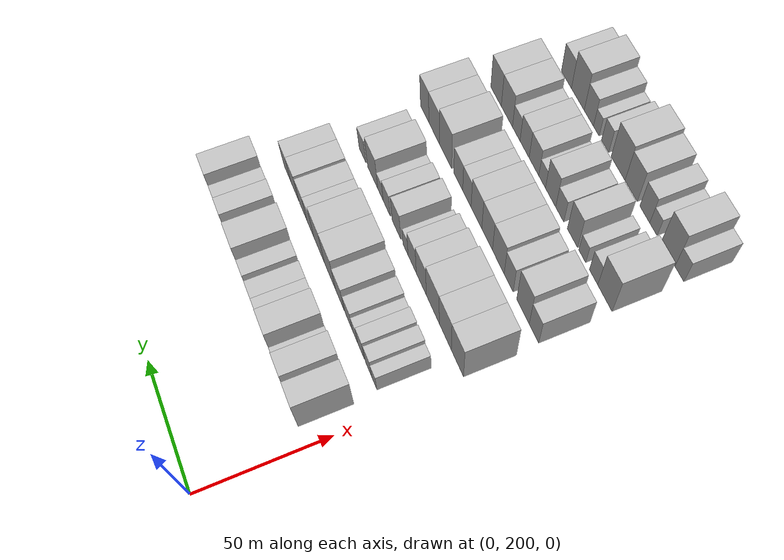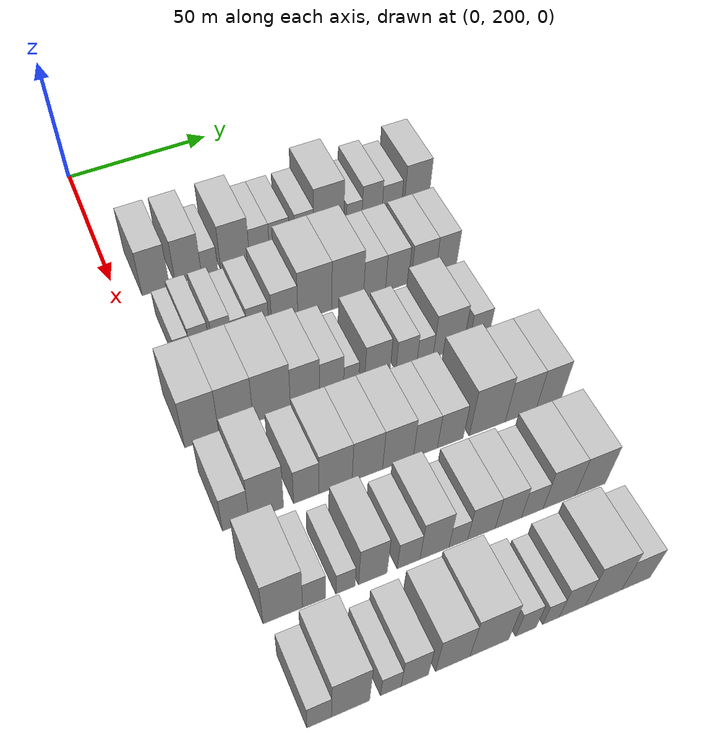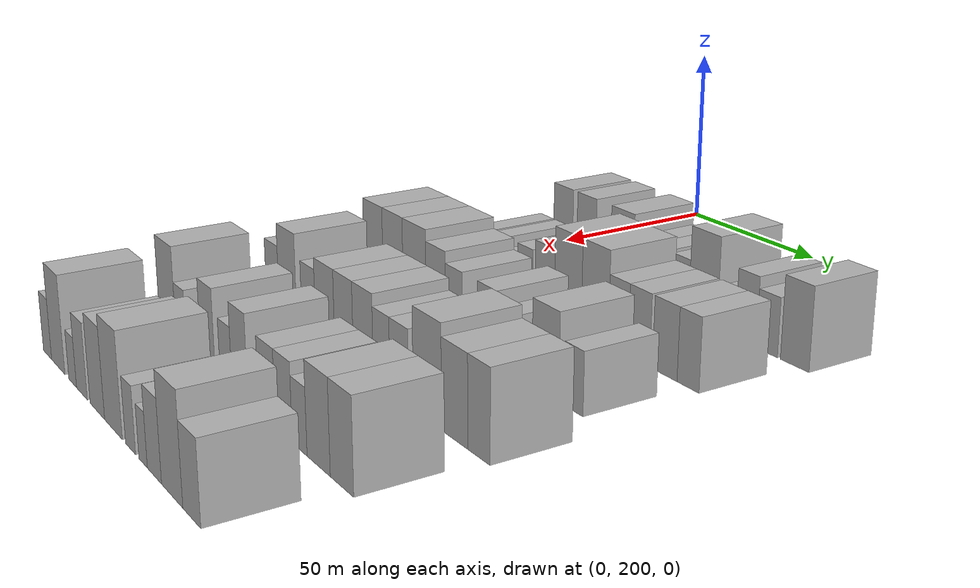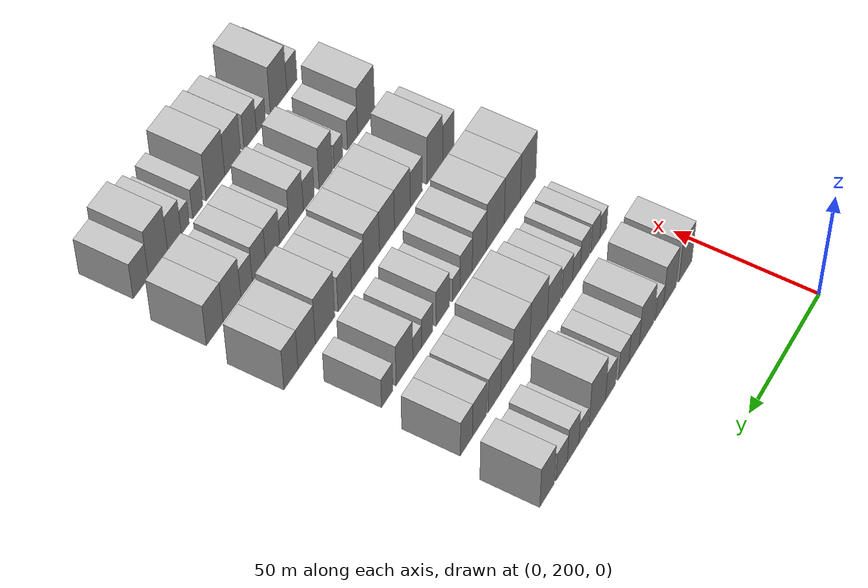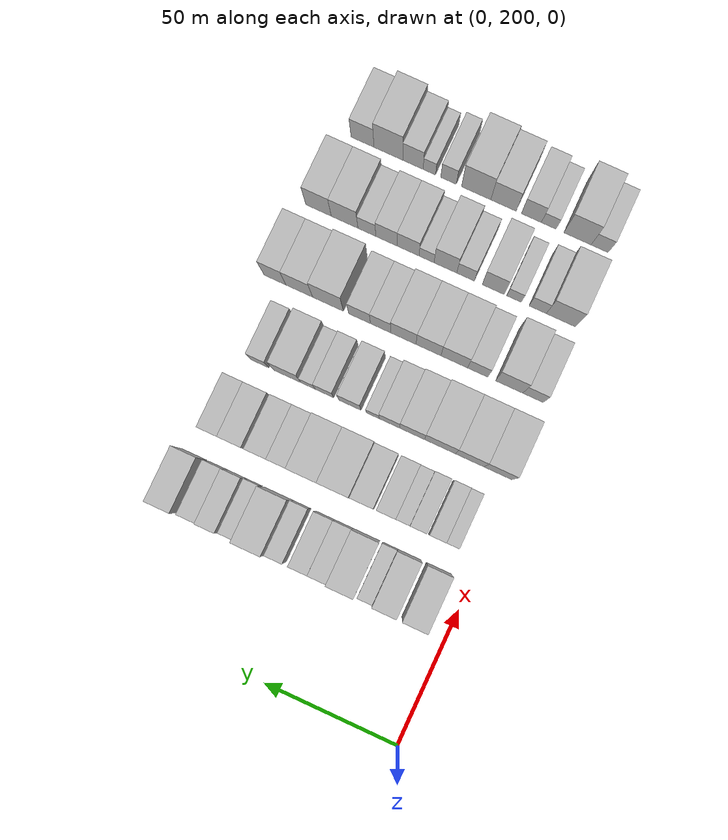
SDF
<sdf version="1.6">
 <world name="default">
  <model name="building_84">
   <static>1</static>
   <pose>50.0000 212.1249 0 0.000000 0.000000 0.000000</pose>
   <link name="link">
    <pose>0 0 10.50 0 0 0</pose>
    <collision name="collision"><geometry><box><size>20.0000 9.2497 21.0000</size></box></geometry></collision>
    <visual name="visual">
     <cast_shadows>0</cast_shadows>
     <geometry><box><size>20.0000 9.2497 21.0000</size></box></geometry>
     <material>
      <script>
       <uri>model://HANNAS_wall/materials/scripts</uri>
       <uri>model://HANNAS_wall/materials/textures</uri>
       <name>vrc/HANNAS_wall</name>
      </script>
     </material>
    </visual>
   </link>
  </model>
  <model name="building_85">
   <static>1</static>
   <pose>50.0000 223.1936 0 0.000000 0.000000 0.000000</pose>
   <link name="link">
    <pose>0 0 10.50 0 0 0</pose>
    <collision name="collision"><geometry><box><size>20.0000 8.8878 21.0000</size></box></geometry></collision>
    <visual name="visual">
     <cast_shadows>0</cast_shadows>
     <geometry><box><size>20.0000 8.8878 21.0000</size></box></geometry>
     <material>
      <script>
       <uri>model://HANNAS_wall/materials/scripts</uri>
       <uri>model://HANNAS_wall/materials/textures</uri>
       <name>vrc/HANNAS_wall</name>
      </script>
     </material>
    </visual>
   </link>
  </model>
  <model name="building_86">
   <static>1</static>
   <pose>50.0000 230.4290 0 0.000000 0.000000 0.000000</pose>
   <link name="link">
    <pose>0 0 6.00 0 0 0</pose>
    <collision name="collision"><geometry><box><size>20.0000 5.5831 12.0000</size></box></geometry></collision>
    <visual name="visual">
     <cast_shadows>0</cast_shadows>
     <geometry><box><size>20.0000 5.5831 12.0000</size></box></geometry>
     <material>
      <script>
       <uri>model://HANNAS_wall/materials/scripts</uri>
       <uri>model://HANNAS_wall/materials/textures</uri>
       <name>vrc/HANNAS_wall</name>
      </script>
     </material>
    </visual>
   </link>
  </model>
  <model name="building_87">
   <static>1</static>
   <pose>50.0000 239.2342 0 0.000000 0.000000 0.000000</pose>
   <link name="link">
    <pose>0 0 10.50 0 0 0</pose>
    <collision name="collision"><geometry><box><size>20.0000 10.0271 21.0000</size></box></geometry></collision>
    <visual name="visual">
     <cast_shadows>0</cast_shadows>
     <geometry><box><size>20.0000 10.0271 21.0000</size></box></geometry>
     <material>
      <script>
       <uri>model://HANNAS_wall/materials/scripts</uri>
       <uri>model://HANNAS_wall/materials/textures</uri>
       <name>vrc/HANNAS_wall</name>
      </script>
     </material>
    </visual>
   </link>
  </model>
  <model name="building_88">
   <static>1</static>
   <pose>50.0000 247.7460 0 0.000000 0.000000 0.000000</pose>
   <link name="link">
    <pose>0 0 7.50 0 0 0</pose>
    <collision name="collision"><geometry><box><size>20.0000 6.9966 15.0000</size></box></geometry></collision>
    <visual name="visual">
     <cast_shadows>0</cast_shadows>
     <geometry><box><size>20.0000 6.9966 15.0000</size></box></geometry>
     <material>
      <script>
       <uri>model://HANNAS_wall/materials/scripts</uri>
       <uri>model://HANNAS_wall/materials/textures</uri>
       <name>vrc/HANNAS_wall</name>
      </script>
     </material>
    </visual>
   </link>
  </model>
  <model name="building_89">
   <static>1</static>
   <pose>50.0000 254.7841 0 0.000000 0.000000 0.000000</pose>
   <link name="link">
    <pose>0 0 7.50 0 0 0</pose>
    <collision name="collision"><geometry><box><size>20.0000 7.0795 15.0000</size></box></geometry></collision>
    <visual name="visual">
     <cast_shadows>0</cast_shadows>
     <geometry><box><size>20.0000 7.0795 15.0000</size></box></geometry>
     <material>
      <script>
       <uri>model://HANNAS_wall/materials/scripts</uri>
       <uri>model://HANNAS_wall/materials/textures</uri>
       <name>vrc/HANNAS_wall</name>
      </script>
     </material>
    </visual>
   </link>
  </model>
  <model name="building_90">
   <static>1</static>
   <pose>50.0000 263.6608 0 0.000000 0.000000 0.000000</pose>
   <link name="link">
    <pose>0 0 7.50 0 0 0</pose>
    <collision name="collision"><geometry><box><size>20.0000 6.6739 15.0000</size></box></geometry></collision>
    <visual name="visual">
     <cast_shadows>0</cast_shadows>
     <geometry><box><size>20.0000 6.6739 15.0000</size></box></geometry>
     <material>
      <script>
       <uri>model://HANNAS_wall/materials/scripts</uri>
       <uri>model://HANNAS_wall/materials/textures</uri>
       <name>vrc/HANNAS_wall</name>
      </script>
     </material>
    </visual>
   </link>
  </model>
  <model name="building_91">
   <static>1</static>
   <pose>50.0000 272.4208 0 0.000000 0.000000 0.000000</pose>
   <link name="link">
    <pose>0 0 12.00 0 0 0</pose>
    <collision name="collision"><geometry><box><size>20.0000 10.8462 24.0000</size></box></geometry></collision>
    <visual name="visual">
     <cast_shadows>0</cast_shadows>
     <geometry><box><size>20.0000 10.8462 24.0000</size></box></geometry>
     <material>
      <script>
       <uri>model://HANNAS_wall/materials/scripts</uri>
       <uri>model://HANNAS_wall/materials/textures</uri>
       <name>vrc/HANNAS_wall</name>
      </script>
     </material>
    </visual>
   </link>
  </model>
  <model name="building_92">
   <static>1</static>
   <pose>50.0000 281.6630 0 0.000000 0.000000 0.000000</pose>
   <link name="link">
    <pose>0 0 6.00 0 0 0</pose>
    <collision name="collision"><geometry><box><size>20.0000 5.6380 12.0000</size></box></geometry></collision>
    <visual name="visual">
     <cast_shadows>0</cast_shadows>
     <geometry><box><size>20.0000 5.6380 12.0000</size></box></geometry>
     <material>
      <script>
       <uri>model://HANNAS_wall/materials/scripts</uri>
       <uri>model://HANNAS_wall/materials/textures</uri>
       <name>vrc/HANNAS_wall</name>
      </script>
     </material>
    </visual>
   </link>
  </model>
  <model name="building_93">
   <static>1</static>
   <pose>50.0000 288.1796 0 0.000000 0.000000 0.000000</pose>
   <link name="link">
    <pose>0 0 9.00 0 0 0</pose>
    <collision name="collision"><geometry><box><size>20.0000 7.3952 18.0000</size></box></geometry></collision>
    <visual name="visual">
     <cast_shadows>0</cast_shadows>
     <geometry><box><size>20.0000 7.3952 18.0000</size></box></geometry>
     <material>
      <script>
       <uri>model://HANNAS_wall/materials/scripts</uri>
       <uri>model://HANNAS_wall/materials/textures</uri>
       <name>vrc/HANNAS_wall</name>
      </script>
     </material>
    </visual>
   </link>
  </model>
  <model name="building_94">
   <static>1</static>
   <pose>50.0000 295.5066 0 0.000000 0.000000 0.000000</pose>
   <link name="link">
    <pose>0 0 7.50 0 0 0</pose>
    <collision name="collision"><geometry><box><size>20.0000 7.2587 15.0000</size></box></geometry></collision>
    <visual name="visual">
     <cast_shadows>0</cast_shadows>
     <geometry><box><size>20.0000 7.2587 15.0000</size></box></geometry>
     <material>
      <script>
       <uri>model://HANNAS_wall/materials/scripts</uri>
       <uri>model://HANNAS_wall/materials/textures</uri>
       <name>vrc/HANNAS_wall</name>
      </script>
     </material>
    </visual>
   </link>
  </model>
  <model name="building_95">
   <static>1</static>
   <pose>50.0000 304.8062 0 0.000000 0.000000 0.000000</pose>
   <link name="link">
    <pose>0 0 10.50 0 0 0</pose>
    <collision name="collision"><geometry><box><size>20.0000 9.3405 21.0000</size></box></geometry></collision>
    <visual name="visual">
     <cast_shadows>0</cast_shadows>
     <geometry><box><size>20.0000 9.3405 21.0000</size></box></geometry>
     <material>
      <script>
       <uri>model://HANNAS_wall/materials/scripts</uri>
       <uri>model://HANNAS_wall/materials/textures</uri>
       <name>vrc/HANNAS_wall</name>
      </script>
     </material>
    </visual>
   </link>
  </model>
  <model name="building_201">
   <static>1</static>
   <pose>79.0000 211.5168 0 0.000000 0.000000 0.000000</pose>
   <link name="link">
    <pose>0 0 6.00 0 0 0</pose>
    <collision name="collision"><geometry><box><size>20.0000 4.8750 12.0000</size></box></geometry></collision>
    <visual name="visual">
     <cast_shadows>0</cast_shadows>
     <geometry><box><size>20.0000 4.8750 12.0000</size></box></geometry>
     <material>
      <script>
       <uri>model://HANNAS_wall/materials/scripts</uri>
       <uri>model://HANNAS_wall/materials/textures</uri>
       <name>vrc/HANNAS_wall</name>
      </script>
     </material>
    </visual>
   </link>
  </model>
  <model name="building_202">
   <static>1</static>
   <pose>79.0000 217.0160 0 0.000000 0.000000 0.000000</pose>
   <link name="link">
    <pose>0 0 7.50 0 0 0</pose>
    <collision name="collision"><geometry><box><size>20.0000 6.1233 15.0000</size></box></geometry></collision>
    <visual name="visual">
     <cast_shadows>0</cast_shadows>
     <geometry><box><size>20.0000 6.1233 15.0000</size></box></geometry>
     <material>
      <script>
       <uri>model://HANNAS_wall/materials/scripts</uri>
       <uri>model://HANNAS_wall/materials/textures</uri>
       <name>vrc/HANNAS_wall</name>
      </script>
     </material>
    </visual>
   </link>
  </model>
  <model name="building_203">
   <static>1</static>
   <pose>79.0000 224.1585 0 0.000000 0.000000 0.000000</pose>
   <link name="link">
    <pose>0 0 7.50 0 0 0</pose>
    <collision name="collision"><geometry><box><size>20.0000 6.1618 15.0000</size></box></geometry></collision>
    <visual name="visual">
     <cast_shadows>0</cast_shadows>
     <geometry><box><size>20.0000 6.1618 15.0000</size></box></geometry>
     <material>
      <script>
       <uri>model://HANNAS_wall/materials/scripts</uri>
       <uri>model://HANNAS_wall/materials/textures</uri>
       <name>vrc/HANNAS_wall</name>
      </script>
     </material>
    </visual>
   </link>
  </model>
  <model name="building_204">
   <static>1</static>
   <pose>79.0000 229.8541 0 0.000000 0.000000 0.000000</pose>
   <link name="link">
    <pose>0 0 6.00 0 0 0</pose>
    <collision name="collision"><geometry><box><size>20.0000 5.2293 12.0000</size></box></geometry></collision>
    <visual name="visual">
     <cast_shadows>0</cast_shadows>
     <geometry><box><size>20.0000 5.2293 12.0000</size></box></geometry>
     <material>
      <script>
       <uri>model://HANNAS_wall/materials/scripts</uri>
       <uri>model://HANNAS_wall/materials/textures</uri>
       <name>vrc/HANNAS_wall</name>
      </script>
     </material>
    </visual>
   </link>
  </model>
  <model name="building_205">
   <static>1</static>
   <pose>79.0000 236.0425 0 0.000000 0.000000 0.000000</pose>
   <link name="link">
    <pose>0 0 7.50 0 0 0</pose>
    <collision name="collision"><geometry><box><size>20.0000 7.1475 15.0000</size></box></geometry></collision>
    <visual name="visual">
     <cast_shadows>0</cast_shadows>
     <geometry><box><size>20.0000 7.1475 15.0000</size></box></geometry>
     <material>
      <script>
       <uri>model://HANNAS_wall/materials/scripts</uri>
       <uri>model://HANNAS_wall/materials/textures</uri>
       <name>vrc/HANNAS_wall</name>
      </script>
     </material>
    </visual>
   </link>
  </model>
  <model name="building_206">
   <static>1</static>
   <pose>79.0000 244.9759 0 0.000000 0.000000 0.000000</pose>
   <link name="link">
    <pose>0 0 9.00 0 0 0</pose>
    <collision name="collision"><geometry><box><size>20.0000 8.7192 18.0000</size></box></geometry></collision>
    <visual name="visual">
     <cast_shadows>0</cast_shadows>
     <geometry><box><size>20.0000 8.7192 18.0000</size></box></geometry>
     <material>
      <script>
       <uri>model://HANNAS_wall/materials/scripts</uri>
       <uri>model://HANNAS_wall/materials/textures</uri>
       <name>vrc/HANNAS_wall</name>
      </script>
     </material>
    </visual>
   </link>
  </model>
  <model name="building_207">
   <static>1</static>
   <pose>79.0000 255.0947 0 0.000000 0.000000 0.000000</pose>
   <link name="link">
    <pose>0 0 12.00 0 0 0</pose>
    <collision name="collision"><geometry><box><size>20.0000 11.5185 24.0000</size></box></geometry></collision>
    <visual name="visual">
     <cast_shadows>0</cast_shadows>
     <geometry><box><size>20.0000 11.5185 24.0000</size></box></geometry>
     <material>
      <script>
       <uri>model://HANNAS_wall/materials/scripts</uri>
       <uri>model://HANNAS_wall/materials/textures</uri>
       <name>vrc/HANNAS_wall</name>
      </script>
     </material>
    </visual>
   </link>
  </model>
  <model name="building_208">
   <static>1</static>
   <pose>79.0000 266.3754 0 0.000000 0.000000 0.000000</pose>
   <link name="link">
    <pose>0 0 12.00 0 0 0</pose>
    <collision name="collision"><geometry><box><size>20.0000 11.0429 24.0000</size></box></geometry></collision>
    <visual name="visual">
     <cast_shadows>0</cast_shadows>
     <geometry><box><size>20.0000 11.0429 24.0000</size></box></geometry>
     <material>
      <script>
       <uri>model://HANNAS_wall/materials/scripts</uri>
       <uri>model://HANNAS_wall/materials/textures</uri>
       <name>vrc/HANNAS_wall</name>
      </script>
     </material>
    </visual>
   </link>
  </model>
  <model name="building_209">
   <static>1</static>
   <pose>79.0000 275.7684 0 0.000000 0.000000 0.000000</pose>
   <link name="link">
    <pose>0 0 9.00 0 0 0</pose>
    <collision name="collision"><geometry><box><size>20.0000 7.7432 18.0000</size></box></geometry></collision>
    <visual name="visual">
     <cast_shadows>0</cast_shadows>
     <geometry><box><size>20.0000 7.7432 18.0000</size></box></geometry>
     <material>
      <script>
       <uri>model://HANNAS_wall/materials/scripts</uri>
       <uri>model://HANNAS_wall/materials/textures</uri>
       <name>vrc/HANNAS_wall</name>
      </script>
     </material>
    </visual>
   </link>
  </model>
  <model name="building_210">
   <static>1</static>
   <pose>79.0000 283.6930 0 0.000000 0.000000 0.000000</pose>
   <link name="link">
    <pose>0 0 9.00 0 0 0</pose>
    <collision name="collision"><geometry><box><size>20.0000 8.1059 18.0000</size></box></geometry></collision>
    <visual name="visual">
     <cast_shadows>0</cast_shadows>
     <geometry><box><size>20.0000 8.1059 18.0000</size></box></geometry>
     <material>
      <script>
       <uri>model://HANNAS_wall/materials/scripts</uri>
       <uri>model://HANNAS_wall/materials/textures</uri>
       <name>vrc/HANNAS_wall</name>
      </script>
     </material>
    </visual>
   </link>
  </model>
  <model name="building_211">
   <static>1</static>
   <pose>79.0000 293.1529 0 0.000000 0.000000 0.000000</pose>
   <link name="link">
    <pose>0 0 9.00 0 0 0</pose>
    <collision name="collision"><geometry><box><size>20.0000 8.8138 18.0000</size></box></geometry></collision>
    <visual name="visual">
     <cast_shadows>0</cast_shadows>
     <geometry><box><size>20.0000 8.8138 18.0000</size></box></geometry>
     <material>
      <script>
       <uri>model://HANNAS_wall/materials/scripts</uri>
       <uri>model://HANNAS_wall/materials/textures</uri>
       <name>vrc/HANNAS_wall</name>
      </script>
     </material>
    </visual>
   </link>
  </model>
  <model name="building_212">
   <static>1</static>
   <pose>79.0000 301.3259 0 0.000000 0.000000 0.000000</pose>
   <link name="link">
    <pose>0 0 9.00 0 0 0</pose>
    <collision name="collision"><geometry><box><size>20.0000 7.5324 18.0000</size></box></geometry></collision>
    <visual name="visual">
     <cast_shadows>0</cast_shadows>
     <geometry><box><size>20.0000 7.5324 18.0000</size></box></geometry>
     <material>
      <script>
       <uri>model://HANNAS_wall/materials/scripts</uri>
       <uri>model://HANNAS_wall/materials/textures</uri>
       <name>vrc/HANNAS_wall</name>
      </script>
     </material>
    </visual>
   </link>
  </model>
  <model name="building_316">
   <static>1</static>
   <pose>108.0000 207.1189 0 0.000000 0.000000 0.000000</pose>
   <link name="link">
    <pose>0 0 12.00 0 0 0</pose>
    <collision name="collision"><geometry><box><size>20.0000 10.5971 24.0000</size></box></geometry></collision>
    <visual name="visual">
     <cast_shadows>0</cast_shadows>
     <geometry><box><size>20.0000 10.5971 24.0000</size></box></geometry>
     <material>
      <script>
       <uri>model://HANNAS_wall/materials/scripts</uri>
       <uri>model://HANNAS_wall/materials/textures</uri>
       <name>vrc/HANNAS_wall</name>
      </script>
     </material>
    </visual>
   </link>
  </model>
  <model name="building_317">
   <static>1</static>
   <pose>108.0000 217.7843 0 0.000000 0.000000 0.000000</pose>
   <link name="link">
    <pose>0 0 12.00 0 0 0</pose>
    <collision name="collision"><geometry><box><size>20.0000 10.7337 24.0000</size></box></geometry></collision>
    <visual name="visual">
     <cast_shadows>0</cast_shadows>
     <geometry><box><size>20.0000 10.7337 24.0000</size></box></geometry>
     <material>
      <script>
       <uri>model://HANNAS_wall/materials/scripts</uri>
       <uri>model://HANNAS_wall/materials/textures</uri>
       <name>vrc/HANNAS_wall</name>
      </script>
     </material>
    </visual>
   </link>
  </model>
  <model name="building_318">
   <static>1</static>
   <pose>108.0000 229.0322 0 0.000000 0.000000 0.000000</pose>
   <link name="link">
    <pose>0 0 12.00 0 0 0</pose>
    <collision name="collision"><geometry><box><size>20.0000 11.7622 24.0000</size></box></geometry></collision>
    <visual name="visual">
     <cast_shadows>0</cast_shadows>
     <geometry><box><size>20.0000 11.7622 24.0000</size></box></geometry>
     <material>
      <script>
       <uri>model://HANNAS_wall/materials/scripts</uri>
       <uri>model://HANNAS_wall/materials/textures</uri>
       <name>vrc/HANNAS_wall</name>
      </script>
     </material>
    </visual>
   </link>
  </model>
  <model name="building_319">
   <static>1</static>
   <pose>108.0000 239.5868 0 0.000000 0.000000 0.000000</pose>
   <link name="link">
    <pose>0 0 10.50 0 0 0</pose>
    <collision name="collision"><geometry><box><size>20.0000 9.3471 21.0000</size></box></geometry></collision>
    <visual name="visual">
     <cast_shadows>0</cast_shadows>
     <geometry><box><size>20.0000 9.3471 21.0000</size></box></geometry>
     <material>
      <script>
       <uri>model://HANNAS_wall/materials/scripts</uri>
       <uri>model://HANNAS_wall/materials/textures</uri>
       <name>vrc/HANNAS_wall</name>
      </script>
     </material>
    </visual>
   </link>
  </model>
  <model name="building_320">
   <static>1</static>
   <pose>108.0000 248.1758 0 0.000000 0.000000 0.000000</pose>
   <link name="link">
    <pose>0 0 9.00 0 0 0</pose>
    <collision name="collision"><geometry><box><size>20.0000 7.8308 18.0000</size></box></geometry></collision>
    <visual name="visual">
     <cast_shadows>0</cast_shadows>
     <geometry><box><size>20.0000 7.8308 18.0000</size></box></geometry>
     <material>
      <script>
       <uri>model://HANNAS_wall/materials/scripts</uri>
       <uri>model://HANNAS_wall/materials/textures</uri>
       <name>vrc/HANNAS_wall</name>
      </script>
     </material>
    </visual>
   </link>
  </model>
  <model name="building_321">
   <static>1</static>
   <pose>108.0000 254.5835 0 0.000000 0.000000 0.000000</pose>
   <link name="link">
    <pose>0 0 6.00 0 0 0</pose>
    <collision name="collision"><geometry><box><size>20.0000 4.9847 12.0000</size></box></geometry></collision>
    <visual name="visual">
     <cast_shadows>0</cast_shadows>
     <geometry><box><size>20.0000 4.9847 12.0000</size></box></geometry>
     <material>
      <script>
       <uri>model://HANNAS_wall/materials/scripts</uri>
       <uri>model://HANNAS_wall/materials/textures</uri>
       <name>vrc/HANNAS_wall</name>
      </script>
     </material>
    </visual>
   </link>
  </model>
  <model name="building_322">
   <static>1</static>
   <pose>108.0000 263.2909 0 0.000000 0.000000 0.000000</pose>
   <link name="link">
    <pose>0 0 9.00 0 0 0</pose>
    <collision name="collision"><geometry><box><size>20.0000 8.4302 18.0000</size></box></geometry></collision>
    <visual name="visual">
     <cast_shadows>0</cast_shadows>
     <geometry><box><size>20.0000 8.4302 18.0000</size></box></geometry>
     <material>
      <script>
       <uri>model://HANNAS_wall/materials/scripts</uri>
       <uri>model://HANNAS_wall/materials/textures</uri>
       <name>vrc/HANNAS_wall</name>
      </script>
     </material>
    </visual>
   </link>
  </model>
  <model name="building_323">
   <static>1</static>
   <pose>108.0000 273.0426 0 0.000000 0.000000 0.000000</pose>
   <link name="link">
    <pose>0 0 7.50 0 0 0</pose>
    <collision name="collision"><geometry><box><size>20.0000 7.0733 15.0000</size></box></geometry></collision>
    <visual name="visual">
     <cast_shadows>0</cast_shadows>
     <geometry><box><size>20.0000 7.0733 15.0000</size></box></geometry>
     <material>
      <script>
       <uri>model://HANNAS_wall/materials/scripts</uri>
       <uri>model://HANNAS_wall/materials/textures</uri>
       <name>vrc/HANNAS_wall</name>
      </script>
     </material>
    </visual>
   </link>
  </model>
  <model name="building_324">
   <static>1</static>
   <pose>108.0000 279.3125 0 0.000000 0.000000 0.000000</pose>
   <link name="link">
    <pose>0 0 6.00 0 0 0</pose>
    <collision name="collision"><geometry><box><size>20.0000 5.4664 12.0000</size></box></geometry></collision>
    <visual name="visual">
     <cast_shadows>0</cast_shadows>
     <geometry><box><size>20.0000 5.4664 12.0000</size></box></geometry>
     <material>
      <script>
       <uri>model://HANNAS_wall/materials/scripts</uri>
       <uri>model://HANNAS_wall/materials/textures</uri>
       <name>vrc/HANNAS_wall</name>
      </script>
     </material>
    </visual>
   </link>
  </model>
  <model name="building_325">
   <static>1</static>
   <pose>108.0000 287.2824 0 0.000000 0.000000 0.000000</pose>
   <link name="link">
    <pose>0 0 10.50 0 0 0</pose>
    <collision name="collision"><geometry><box><size>20.0000 10.4735 21.0000</size></box></geometry></collision>
    <visual name="visual">
     <cast_shadows>0</cast_shadows>
     <geometry><box><size>20.0000 10.4735 21.0000</size></box></geometry>
     <material>
      <script>
       <uri>model://HANNAS_wall/materials/scripts</uri>
       <uri>model://HANNAS_wall/materials/textures</uri>
       <name>vrc/HANNAS_wall</name>
      </script>
     </material>
    </visual>
   </link>
  </model>
  <model name="building_326">
   <static>1</static>
   <pose>108.0000 297.9824 0 0.000000 0.000000 0.000000</pose>
   <link name="link">
    <pose>0 0 7.50 0 0 0</pose>
    <collision name="collision"><geometry><box><size>20.0000 6.9266 15.0000</size></box></geometry></collision>
    <visual name="visual">
     <cast_shadows>0</cast_shadows>
     <geometry><box><size>20.0000 6.9266 15.0000</size></box></geometry>
     <material>
      <script>
       <uri>model://HANNAS_wall/materials/scripts</uri>
       <uri>model://HANNAS_wall/materials/textures</uri>
       <name>vrc/HANNAS_wall</name>
      </script>
     </material>
    </visual>
   </link>
  </model>
  <model name="building_432">
   <static>1</static>
   <pose>137.0000 206.7230 0 0.000000 0.000000 0.000000</pose>
   <link name="link">
    <pose>0 0 9.00 0 0 0</pose>
    <collision name="collision"><geometry><box><size>20.0000 7.7894 18.0000</size></box></geometry></collision>
    <visual name="visual">
     <cast_shadows>0</cast_shadows>
     <geometry><box><size>20.0000 7.7894 18.0000</size></box></geometry>
     <material>
      <script>
       <uri>model://HANNAS_wall/materials/scripts</uri>
       <uri>model://HANNAS_wall/materials/textures</uri>
       <name>vrc/HANNAS_wall</name>
      </script>
     </material>
    </visual>
   </link>
  </model>
  <model name="building_433">
   <static>1</static>
   <pose>137.0000 215.8037 0 0.000000 0.000000 0.000000</pose>
   <link name="link">
    <pose>0 0 12.00 0 0 0</pose>
    <collision name="collision"><geometry><box><size>20.0000 10.3720 24.0000</size></box></geometry></collision>
    <visual name="visual">
     <cast_shadows>0</cast_shadows>
     <geometry><box><size>20.0000 10.3720 24.0000</size></box></geometry>
     <material>
      <script>
       <uri>model://HANNAS_wall/materials/scripts</uri>
       <uri>model://HANNAS_wall/materials/textures</uri>
       <name>vrc/HANNAS_wall</name>
      </script>
     </material>
    </visual>
   </link>
  </model>
  <model name="building_434">
   <static>1</static>
   <pose>137.0000 227.8508 0 0.000000 0.000000 0.000000</pose>
   <link name="link">
    <pose>0 0 9.00 0 0 0</pose>
    <collision name="collision"><geometry><box><size>20.0000 7.7222 18.0000</size></box></geometry></collision>
    <visual name="visual">
     <cast_shadows>0</cast_shadows>
     <geometry><box><size>20.0000 7.7222 18.0000</size></box></geometry>
     <material>
      <script>
       <uri>model://HANNAS_wall/materials/scripts</uri>
       <uri>model://HANNAS_wall/materials/textures</uri>
       <name>vrc/HANNAS_wall</name>
      </script>
     </material>
    </visual>
   </link>
  </model>
  <model name="building_435">
   <static>1</static>
   <pose>137.0000 236.8154 0 0.000000 0.000000 0.000000</pose>
   <link name="link">
    <pose>0 0 10.50 0 0 0</pose>
    <collision name="collision"><geometry><box><size>20.0000 10.2070 21.0000</size></box></geometry></collision>
    <visual name="visual">
     <cast_shadows>0</cast_shadows>
     <geometry><box><size>20.0000 10.2070 21.0000</size></box></geometry>
     <material>
      <script>
       <uri>model://HANNAS_wall/materials/scripts</uri>
       <uri>model://HANNAS_wall/materials/textures</uri>
       <name>vrc/HANNAS_wall</name>
      </script>
     </material>
    </visual>
   </link>
  </model>
  <model name="building_436">
   <static>1</static>
   <pose>137.0000 246.6935 0 0.000000 0.000000 0.000000</pose>
   <link name="link">
    <pose>0 0 10.50 0 0 0</pose>
    <collision name="collision"><geometry><box><size>20.0000 9.5491 21.0000</size></box></geometry></collision>
    <visual name="visual">
     <cast_shadows>0</cast_shadows>
     <geometry><box><size>20.0000 9.5491 21.0000</size></box></geometry>
     <material>
      <script>
       <uri>model://HANNAS_wall/materials/scripts</uri>
       <uri>model://HANNAS_wall/materials/textures</uri>
       <name>vrc/HANNAS_wall</name>
      </script>
     </material>
    </visual>
   </link>
  </model>
  <model name="building_437">
   <static>1</static>
   <pose>137.0000 256.3350 0 0.000000 0.000000 0.000000</pose>
   <link name="link">
    <pose>0 0 10.50 0 0 0</pose>
    <collision name="collision"><geometry><box><size>20.0000 9.7339 21.0000</size></box></geometry></collision>
    <visual name="visual">
     <cast_shadows>0</cast_shadows>
     <geometry><box><size>20.0000 9.7339 21.0000</size></box></geometry>
     <material>
      <script>
       <uri>model://HANNAS_wall/materials/scripts</uri>
       <uri>model://HANNAS_wall/materials/textures</uri>
       <name>vrc/HANNAS_wall</name>
      </script>
     </material>
    </visual>
   </link>
  </model>
  <model name="building_438">
   <static>1</static>
   <pose>137.0000 265.0860 0 0.000000 0.000000 0.000000</pose>
   <link name="link">
    <pose>0 0 9.00 0 0 0</pose>
    <collision name="collision"><geometry><box><size>20.0000 7.7680 18.0000</size></box></geometry></collision>
    <visual name="visual">
     <cast_shadows>0</cast_shadows>
     <geometry><box><size>20.0000 7.7680 18.0000</size></box></geometry>
     <material>
      <script>
       <uri>model://HANNAS_wall/materials/scripts</uri>
       <uri>model://HANNAS_wall/materials/textures</uri>
       <name>vrc/HANNAS_wall</name>
      </script>
     </material>
    </visual>
   </link>
  </model>
  <model name="building_439">
   <static>1</static>
   <pose>137.0000 273.1729 0 0.000000 0.000000 0.000000</pose>
   <link name="link">
    <pose>0 0 9.00 0 0 0</pose>
    <collision name="collision"><geometry><box><size>20.0000 8.4057 18.0000</size></box></geometry></collision>
    <visual name="visual">
     <cast_shadows>0</cast_shadows>
     <geometry><box><size>20.0000 8.4057 18.0000</size></box></geometry>
     <material>
      <script>
       <uri>model://HANNAS_wall/materials/scripts</uri>
       <uri>model://HANNAS_wall/materials/textures</uri>
       <name>vrc/HANNAS_wall</name>
      </script>
     </material>
    </visual>
   </link>
  </model>
  <model name="building_440">
   <static>1</static>
   <pose>137.0000 285.3204 0 0.000000 0.000000 0.000000</pose>
   <link name="link">
    <pose>0 0 12.00 0 0 0</pose>
    <collision name="collision"><geometry><box><size>20.0000 11.8894 24.0000</size></box></geometry></collision>
    <visual name="visual">
     <cast_shadows>0</cast_shadows>
     <geometry><box><size>20.0000 11.8894 24.0000</size></box></geometry>
     <material>
      <script>
       <uri>model://HANNAS_wall/materials/scripts</uri>
       <uri>model://HANNAS_wall/materials/textures</uri>
       <name>vrc/HANNAS_wall</name>
      </script>
     </material>
    </visual>
   </link>
  </model>
  <model name="building_441">
   <static>1</static>
   <pose>137.0000 296.4485 0 0.000000 0.000000 0.000000</pose>
   <link name="link">
    <pose>0 0 10.50 0 0 0</pose>
    <collision name="collision"><geometry><box><size>20.0000 10.3668 21.0000</size></box></geometry></collision>
    <visual name="visual">
     <cast_shadows>0</cast_shadows>
     <geometry><box><size>20.0000 10.3668 21.0000</size></box></geometry>
     <material>
      <script>
       <uri>model://HANNAS_wall/materials/scripts</uri>
       <uri>model://HANNAS_wall/materials/textures</uri>
       <name>vrc/HANNAS_wall</name>
      </script>
     </material>
    </visual>
   </link>
  </model>
  <model name="building_442">
   <static>1</static>
   <pose>137.0000 305.8704 0 0.000000 0.000000 0.000000</pose>
   <link name="link">
    <pose>0 0 10.50 0 0 0</pose>
    <collision name="collision"><geometry><box><size>20.0000 8.4770 21.0000</size></box></geometry></collision>
    <visual name="visual">
     <cast_shadows>0</cast_shadows>
     <geometry><box><size>20.0000 8.4770 21.0000</size></box></geometry>
     <material>
      <script>
       <uri>model://HANNAS_wall/materials/scripts</uri>
       <uri>model://HANNAS_wall/materials/textures</uri>
       <name>vrc/HANNAS_wall</name>
      </script>
     </material>
    </visual>
   </link>
  </model>
  <model name="building_542">
   <static>1</static>
   <pose>166.0000 209.0210 0 0.000000 0.000000 0.000000</pose>
   <link name="link">
    <pose>0 0 12.00 0 0 0</pose>
    <collision name="collision"><geometry><box><size>20.0000 11.1664 24.0000</size></box></geometry></collision>
    <visual name="visual">
     <cast_shadows>0</cast_shadows>
     <geometry><box><size>20.0000 11.1664 24.0000</size></box></geometry>
     <material>
      <script>
       <uri>model://HANNAS_wall/materials/scripts</uri>
       <uri>model://HANNAS_wall/materials/textures</uri>
       <name>vrc/HANNAS_wall</name>
      </script>
     </material>
    </visual>
   </link>
  </model>
  <model name="building_543">
   <static>1</static>
   <pose>166.0000 217.9027 0 0.000000 0.000000 0.000000</pose>
   <link name="link">
    <pose>0 0 7.50 0 0 0</pose>
    <collision name="collision"><geometry><box><size>20.0000 6.5969 15.0000</size></box></geometry></collision>
    <visual name="visual">
     <cast_shadows>0</cast_shadows>
     <geometry><box><size>20.0000 6.5969 15.0000</size></box></geometry>
     <material>
      <script>
       <uri>model://HANNAS_wall/materials/scripts</uri>
       <uri>model://HANNAS_wall/materials/textures</uri>
       <name>vrc/HANNAS_wall</name>
      </script>
     </material>
    </visual>
   </link>
  </model>
  <model name="building_544">
   <static>1</static>
   <pose>166.0000 226.9940 0 0.000000 0.000000 0.000000</pose>
   <link name="link">
    <pose>0 0 6.00 0 0 0</pose>
    <collision name="collision"><geometry><box><size>20.0000 5.5857 12.0000</size></box></geometry></collision>
    <visual name="visual">
     <cast_shadows>0</cast_shadows>
     <geometry><box><size>20.0000 5.5857 12.0000</size></box></geometry>
     <material>
      <script>
       <uri>model://HANNAS_wall/materials/scripts</uri>
       <uri>model://HANNAS_wall/materials/textures</uri>
       <name>vrc/HANNAS_wall</name>
      </script>
     </material>
    </visual>
   </link>
  </model>
  <model name="building_545">
   <static>1</static>
   <pose>166.0000 235.0064 0 0.000000 0.000000 0.000000</pose>
   <link name="link">
    <pose>0 0 10.50 0 0 0</pose>
    <collision name="collision"><geometry><box><size>20.0000 8.4392 21.0000</size></box></geometry></collision>
    <visual name="visual">
     <cast_shadows>0</cast_shadows>
     <geometry><box><size>20.0000 8.4392 21.0000</size></box></geometry>
     <material>
      <script>
       <uri>model://HANNAS_wall/materials/scripts</uri>
       <uri>model://HANNAS_wall/materials/textures</uri>
       <name>vrc/HANNAS_wall</name>
      </script>
     </material>
    </visual>
   </link>
  </model>
  <model name="building_546">
   <static>1</static>
   <pose>166.0000 245.6340 0 0.000000 0.000000 0.000000</pose>
   <link name="link">
    <pose>0 0 7.50 0 0 0</pose>
    <collision name="collision"><geometry><box><size>20.0000 6.8159 15.0000</size></box></geometry></collision>
    <visual name="visual">
     <cast_shadows>0</cast_shadows>
     <geometry><box><size>20.0000 6.8159 15.0000</size></box></geometry>
     <material>
      <script>
       <uri>model://HANNAS_wall/materials/scripts</uri>
       <uri>model://HANNAS_wall/materials/textures</uri>
       <name>vrc/HANNAS_wall</name>
      </script>
     </material>
    </visual>
   </link>
  </model>
  <model name="building_547">
   <static>1</static>
   <pose>166.0000 253.4377 0 0.000000 0.000000 0.000000</pose>
   <link name="link">
    <pose>0 0 10.50 0 0 0</pose>
    <collision name="collision"><geometry><box><size>20.0000 8.7917 21.0000</size></box></geometry></collision>
    <visual name="visual">
     <cast_shadows>0</cast_shadows>
     <geometry><box><size>20.0000 8.7917 21.0000</size></box></geometry>
     <material>
      <script>
       <uri>model://HANNAS_wall/materials/scripts</uri>
       <uri>model://HANNAS_wall/materials/textures</uri>
       <name>vrc/HANNAS_wall</name>
      </script>
     </material>
    </visual>
   </link>
  </model>
  <model name="building_548">
   <static>1</static>
   <pose>166.0000 260.7228 0 0.000000 0.000000 0.000000</pose>
   <link name="link">
    <pose>0 0 6.00 0 0 0</pose>
    <collision name="collision"><geometry><box><size>20.0000 5.7785 12.0000</size></box></geometry></collision>
    <visual name="visual">
     <cast_shadows>0</cast_shadows>
     <geometry><box><size>20.0000 5.7785 12.0000</size></box></geometry>
     <material>
      <script>
       <uri>model://HANNAS_wall/materials/scripts</uri>
       <uri>model://HANNAS_wall/materials/textures</uri>
       <name>vrc/HANNAS_wall</name>
      </script>
     </material>
    </visual>
   </link>
  </model>
  <model name="building_549">
   <static>1</static>
   <pose>166.0000 267.8840 0 0.000000 0.000000 0.000000</pose>
   <link name="link">
    <pose>0 0 9.00 0 0 0</pose>
    <collision name="collision"><geometry><box><size>20.0000 8.5438 18.0000</size></box></geometry></collision>
    <visual name="visual">
     <cast_shadows>0</cast_shadows>
     <geometry><box><size>20.0000 8.5438 18.0000</size></box></geometry>
     <material>
      <script>
       <uri>model://HANNAS_wall/materials/scripts</uri>
       <uri>model://HANNAS_wall/materials/textures</uri>
       <name>vrc/HANNAS_wall</name>
      </script>
     </material>
    </visual>
   </link>
  </model>
  <model name="building_550">
   <static>1</static>
   <pose>166.0000 276.2720 0 0.000000 0.000000 0.000000</pose>
   <link name="link">
    <pose>0 0 9.00 0 0 0</pose>
    <collision name="collision"><geometry><box><size>20.0000 8.2321 18.0000</size></box></geometry></collision>
    <visual name="visual">
     <cast_shadows>0</cast_shadows>
     <geometry><box><size>20.0000 8.2321 18.0000</size></box></geometry>
     <material>
      <script>
       <uri>model://HANNAS_wall/materials/scripts</uri>
       <uri>model://HANNAS_wall/materials/textures</uri>
       <name>vrc/HANNAS_wall</name>
      </script>
     </material>
    </visual>
   </link>
  </model>
  <model name="building_551">
   <static>1</static>
   <pose>166.0000 283.8422 0 0.000000 0.000000 0.000000</pose>
   <link name="link">
    <pose>0 0 7.50 0 0 0</pose>
    <collision name="collision"><geometry><box><size>20.0000 6.9084 15.0000</size></box></geometry></collision>
    <visual name="visual">
     <cast_shadows>0</cast_shadows>
     <geometry><box><size>20.0000 6.9084 15.0000</size></box></geometry>
     <material>
      <script>
       <uri>model://HANNAS_wall/materials/scripts</uri>
       <uri>model://HANNAS_wall/materials/textures</uri>
       <name>vrc/HANNAS_wall</name>
      </script>
     </material>
    </visual>
   </link>
  </model>
  <model name="building_552">
   <static>1</static>
   <pose>166.0000 292.4951 0 0.000000 0.000000 0.000000</pose>
   <link name="link">
    <pose>0 0 10.50 0 0 0</pose>
    <collision name="collision"><geometry><box><size>20.0000 10.3975 21.0000</size></box></geometry></collision>
    <visual name="visual">
     <cast_shadows>0</cast_shadows>
     <geometry><box><size>20.0000 10.3975 21.0000</size></box></geometry>
     <material>
      <script>
       <uri>model://HANNAS_wall/materials/scripts</uri>
       <uri>model://HANNAS_wall/materials/textures</uri>
       <name>vrc/HANNAS_wall</name>
      </script>
     </material>
    </visual>
   </link>
  </model>
  <model name="building_553">
   <static>1</static>
   <pose>166.0000 302.6463 0 0.000000 0.000000 0.000000</pose>
   <link name="link">
    <pose>0 0 10.50 0 0 0</pose>
    <collision name="collision"><geometry><box><size>20.0000 9.9049 21.0000</size></box></geometry></collision>
    <visual name="visual">
     <cast_shadows>0</cast_shadows>
     <geometry><box><size>20.0000 9.9049 21.0000</size></box></geometry>
     <material>
      <script>
       <uri>model://HANNAS_wall/materials/scripts</uri>
       <uri>model://HANNAS_wall/materials/textures</uri>
       <name>vrc/HANNAS_wall</name>
      </script>
     </material>
    </visual>
   </link>
  </model>
  <model name="building_659">
   <static>1</static>
   <pose>195.0000 206.9744 0 0.000000 0.000000 0.000000</pose>
   <link name="link">
    <pose>0 0 7.50 0 0 0</pose>
    <collision name="collision"><geometry><box><size>20.0000 6.6171 15.0000</size></box></geometry></collision>
    <visual name="visual">
     <cast_shadows>0</cast_shadows>
     <geometry><box><size>20.0000 6.6171 15.0000</size></box></geometry>
     <material>
      <script>
       <uri>model://HANNAS_wall/materials/scripts</uri>
       <uri>model://HANNAS_wall/materials/textures</uri>
       <name>vrc/HANNAS_wall</name>
      </script>
     </material>
    </visual>
   </link>
  </model>
  <model name="building_660">
   <static>1</static>
   <pose>195.0000 215.5113 0 0.000000 0.000000 0.000000</pose>
   <link name="link">
    <pose>0 0 12.00 0 0 0</pose>
    <collision name="collision"><geometry><box><size>20.0000 10.4567 24.0000</size></box></geometry></collision>
    <visual name="visual">
     <cast_shadows>0</cast_shadows>
     <geometry><box><size>20.0000 10.4567 24.0000</size></box></geometry>
     <material>
      <script>
       <uri>model://HANNAS_wall/materials/scripts</uri>
       <uri>model://HANNAS_wall/materials/textures</uri>
       <name>vrc/HANNAS_wall</name>
      </script>
     </material>
    </visual>
   </link>
  </model>
  <model name="building_661">
   <static>1</static>
   <pose>195.0000 226.5986 0 0.000000 0.000000 0.000000</pose>
   <link name="link">
    <pose>0 0 6.00 0 0 0</pose>
    <collision name="collision"><geometry><box><size>20.0000 5.7180 12.0000</size></box></geometry></collision>
    <visual name="visual">
     <cast_shadows>0</cast_shadows>
     <geometry><box><size>20.0000 5.7180 12.0000</size></box></geometry>
     <material>
      <script>
       <uri>model://HANNAS_wall/materials/scripts</uri>
       <uri>model://HANNAS_wall/materials/textures</uri>
       <name>vrc/HANNAS_wall</name>
      </script>
     </material>
    </visual>
   </link>
  </model>
  <model name="building_662">
   <static>1</static>
   <pose>195.0000 233.3231 0 0.000000 0.000000 0.000000</pose>
   <link name="link">
    <pose>0 0 9.00 0 0 0</pose>
    <collision name="collision"><geometry><box><size>20.0000 7.7310 18.0000</size></box></geometry></collision>
    <visual name="visual">
     <cast_shadows>0</cast_shadows>
     <geometry><box><size>20.0000 7.7310 18.0000</size></box></geometry>
     <material>
      <script>
       <uri>model://HANNAS_wall/materials/scripts</uri>
       <uri>model://HANNAS_wall/materials/textures</uri>
       <name>vrc/HANNAS_wall</name>
      </script>
     </material>
    </visual>
   </link>
  </model>
  <model name="building_663">
   <static>1</static>
   <pose>195.0000 244.1148 0 0.000000 0.000000 0.000000</pose>
   <link name="link">
    <pose>0 0 10.50 0 0 0</pose>
    <collision name="collision"><geometry><box><size>20.0000 9.8524 21.0000</size></box></geometry></collision>
    <visual name="visual">
     <cast_shadows>0</cast_shadows>
     <geometry><box><size>20.0000 9.8524 21.0000</size></box></geometry>
     <material>
      <script>
       <uri>model://HANNAS_wall/materials/scripts</uri>
       <uri>model://HANNAS_wall/materials/textures</uri>
       <name>vrc/HANNAS_wall</name>
      </script>
     </material>
    </visual>
   </link>
  </model>
  <model name="building_664">
   <static>1</static>
   <pose>195.0000 254.7298 0 0.000000 0.000000 0.000000</pose>
   <link name="link">
    <pose>0 0 12.00 0 0 0</pose>
    <collision name="collision"><geometry><box><size>20.0000 11.3777 24.0000</size></box></geometry></collision>
    <visual name="visual">
     <cast_shadows>0</cast_shadows>
     <geometry><box><size>20.0000 11.3777 24.0000</size></box></geometry>
     <material>
      <script>
       <uri>model://HANNAS_wall/materials/scripts</uri>
       <uri>model://HANNAS_wall/materials/textures</uri>
       <name>vrc/HANNAS_wall</name>
      </script>
     </material>
    </visual>
   </link>
  </model>
  <model name="building_665">
   <static>1</static>
   <pose>195.0000 265.4573 0 0.000000 0.000000 0.000000</pose>
   <link name="link">
    <pose>0 0 7.50 0 0 0</pose>
    <collision name="collision"><geometry><box><size>20.0000 6.0772 15.0000</size></box></geometry></collision>
    <visual name="visual">
     <cast_shadows>0</cast_shadows>
     <geometry><box><size>20.0000 6.0772 15.0000</size></box></geometry>
     <material>
      <script>
       <uri>model://HANNAS_wall/materials/scripts</uri>
       <uri>model://HANNAS_wall/materials/textures</uri>
       <name>vrc/HANNAS_wall</name>
      </script>
     </material>
    </visual>
   </link>
  </model>
  <model name="building_666">
   <static>1</static>
   <pose>195.0000 272.9273 0 0.000000 0.000000 0.000000</pose>
   <link name="link">
    <pose>0 0 6.00 0 0 0</pose>
    <collision name="collision"><geometry><box><size>20.0000 4.8629 12.0000</size></box></geometry></collision>
    <visual name="visual">
     <cast_shadows>0</cast_shadows>
     <geometry><box><size>20.0000 4.8629 12.0000</size></box></geometry>
     <material>
      <script>
       <uri>model://HANNAS_wall/materials/scripts</uri>
       <uri>model://HANNAS_wall/materials/textures</uri>
       <name>vrc/HANNAS_wall</name>
      </script>
     </material>
    </visual>
   </link>
  </model>
  <model name="building_667">
   <static>1</static>
   <pose>195.0000 279.3284 0 0.000000 0.000000 0.000000</pose>
   <link name="link">
    <pose>0 0 9.00 0 0 0</pose>
    <collision name="collision"><geometry><box><size>20.0000 7.9393 18.0000</size></box></geometry></collision>
    <visual name="visual">
     <cast_shadows>0</cast_shadows>
     <geometry><box><size>20.0000 7.9393 18.0000</size></box></geometry>
     <material>
      <script>
       <uri>model://HANNAS_wall/materials/scripts</uri>
       <uri>model://HANNAS_wall/materials/textures</uri>
       <name>vrc/HANNAS_wall</name>
      </script>
     </material>
    </visual>
   </link>
  </model>
  <model name="building_668">
   <static>1</static>
   <pose>195.0000 288.9325 0 0.000000 0.000000 0.000000</pose>
   <link name="link">
    <pose>0 0 12.00 0 0 0</pose>
    <collision name="collision"><geometry><box><size>20.0000 11.2688 24.0000</size></box></geometry></collision>
    <visual name="visual">
     <cast_shadows>0</cast_shadows>
     <geometry><box><size>20.0000 11.2688 24.0000</size></box></geometry>
     <material>
      <script>
       <uri>model://HANNAS_wall/materials/scripts</uri>
       <uri>model://HANNAS_wall/materials/textures</uri>
       <name>vrc/HANNAS_wall</name>
      </script>
     </material>
    </visual>
   </link>
  </model>
  <model name="building_669">
   <static>1</static>
   <pose>195.0000 299.0443 0 0.000000 0.000000 0.000000</pose>
   <link name="link">
    <pose>0 0 9.00 0 0 0</pose>
    <collision name="collision"><geometry><box><size>20.0000 8.9548 18.0000</size></box></geometry></collision>
    <visual name="visual">
     <cast_shadows>0</cast_shadows>
     <geometry><box><size>20.0000 8.9548 18.0000</size></box></geometry>
     <material>
      <script>
       <uri>model://HANNAS_wall/materials/scripts</uri>
       <uri>model://HANNAS_wall/materials/textures</uri>
       <name>vrc/HANNAS_wall</name>
      </script>
     </material>
    </visual>
   </link>
  </model>
 </world>
</sdf>
